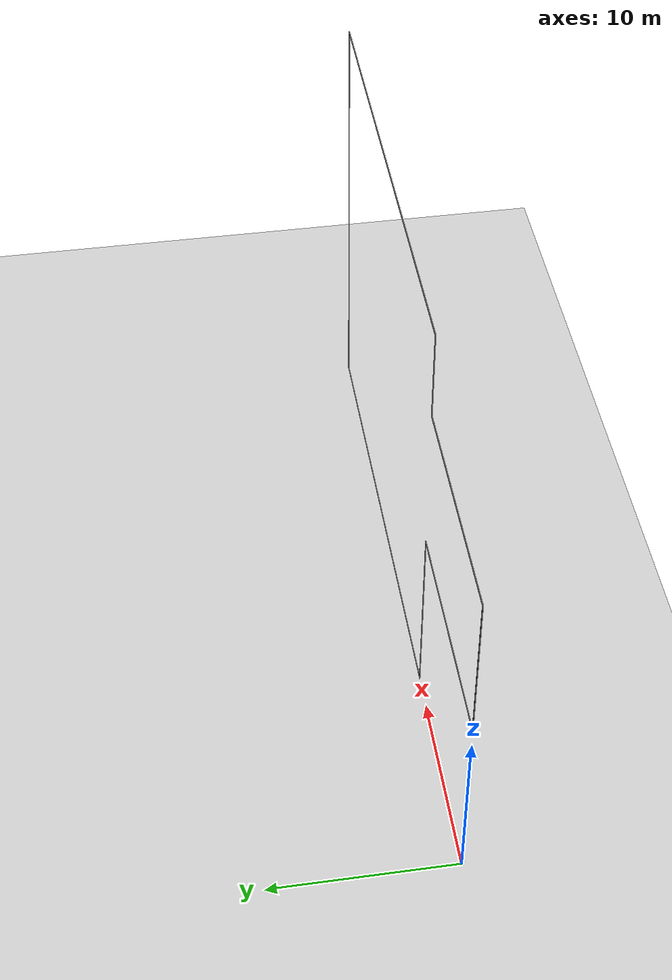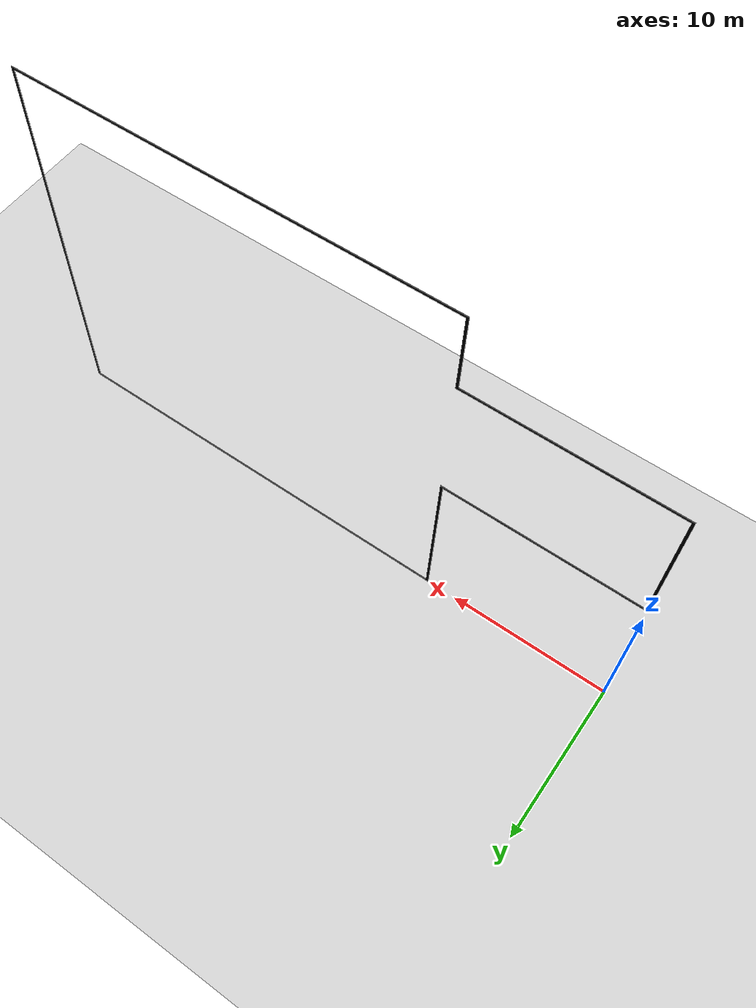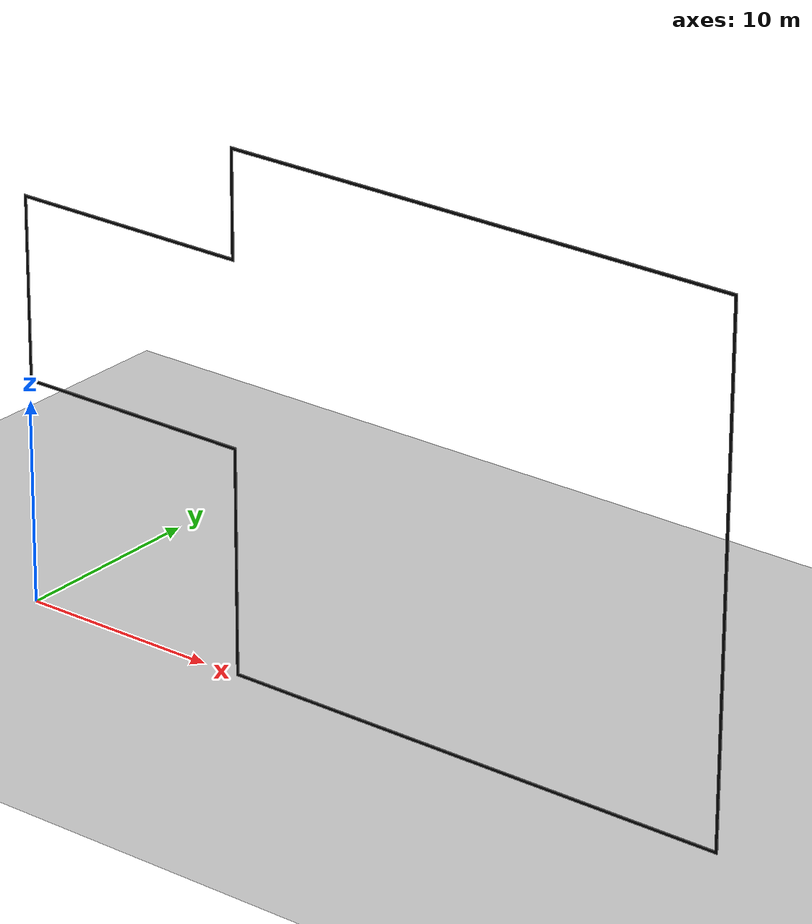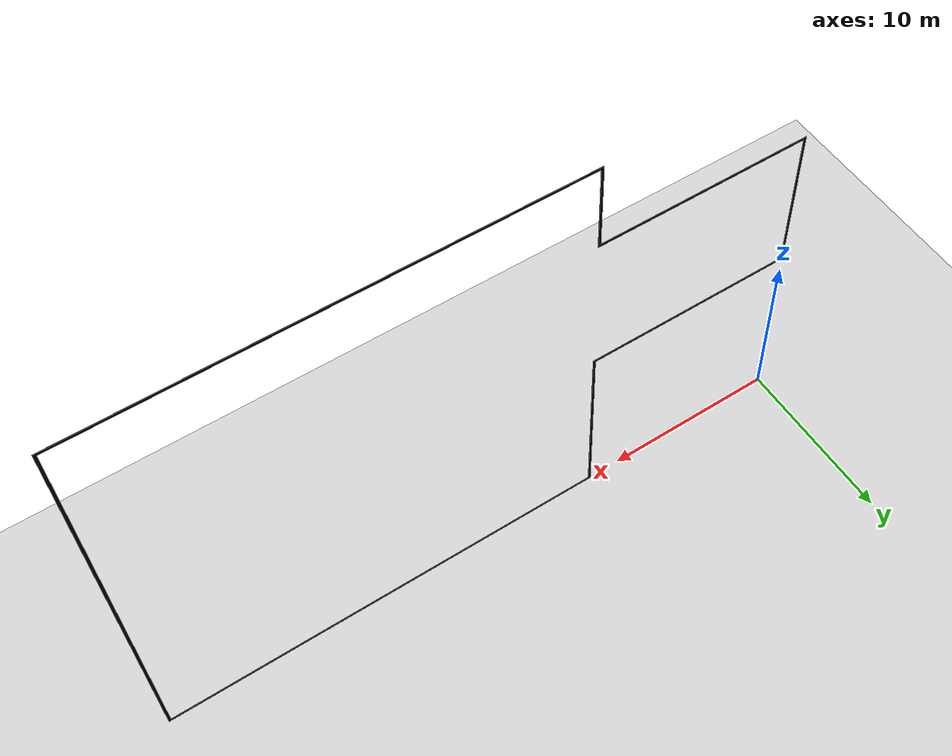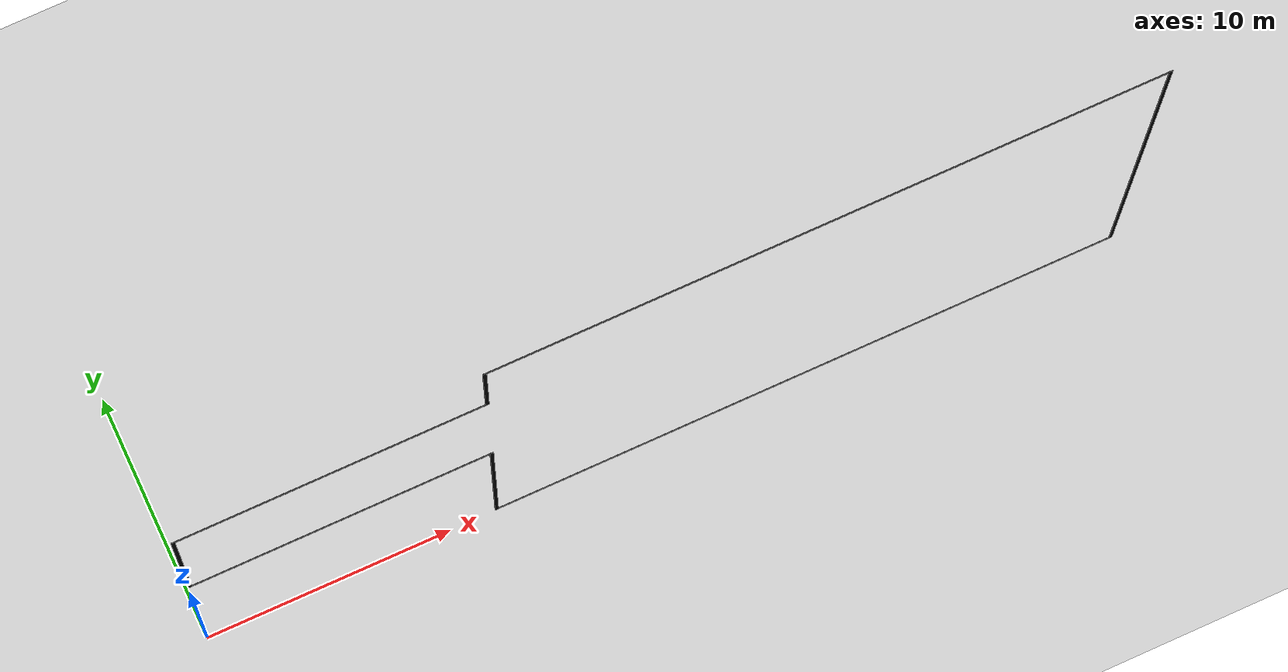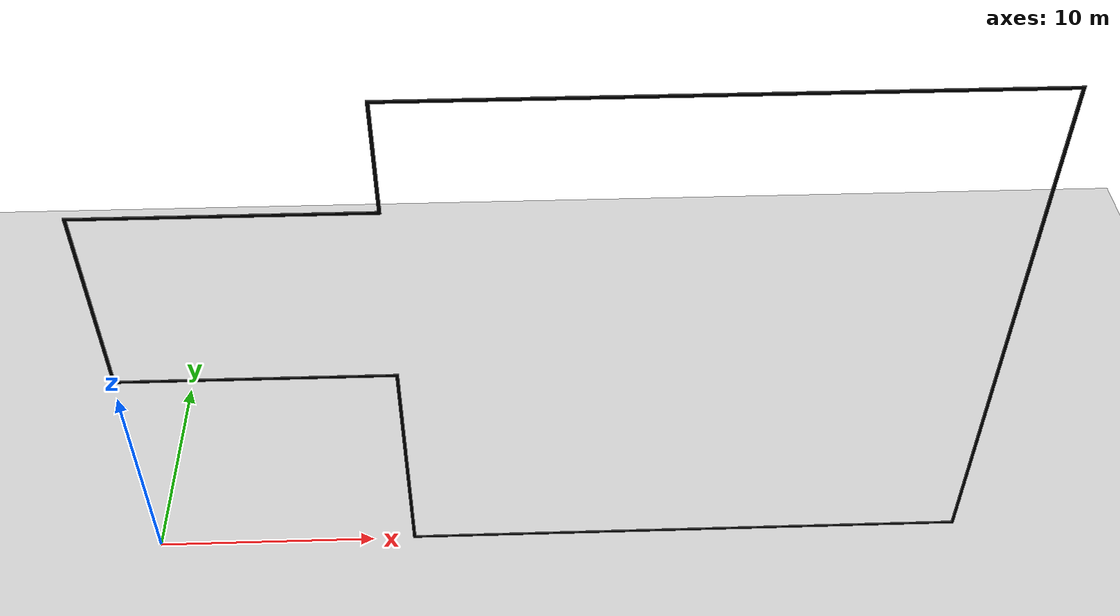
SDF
<?xml version="1.0" ?>
<sdf version="1.7">
  <world name="closed_loop_track3">
    <spherical_coordinates>
      <latitude_deg>0</latitude_deg>
      <longitude_deg>0</longitude_deg>
      <elevation>0</elevation>
      <heading_deg>0</heading_deg>
    </spherical_coordinates>

    <include>
      <uri>model://sun</uri>
    </include>
    <include>
      <uri>model://ground_plane</uri>
    </include>

    <include>
      <uri>model://track3</uri>
      <name>closed_loop_track3_walls</name>
      <pose>0 0 0 0 0 0</pose>
    </include>

    <physics type="ode">
      <real_time_update_rate>1000.0</real_time_update_rate>
      <max_step_size>0.001</max_step_size>
    </physics>
  </world>
</sdf>

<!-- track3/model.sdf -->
<sdf version="1.6">
  <model name="yolwzemin">
    <!-- Modelin tümüne uygulanacak pose: x y z roll pitch yaw -->
    <pose>0 -4.5 0 1.57 0 1.57</pose>

    <!-- Model statik olsun, böylece fizik etkileşimine girmesin -->
    <static>true</static>
    <link name="link">

      <!-- Collision bilgisi mevcut, ancak çarpışmalar devre dışı bırakılıyor -->

      <!-- Görsel Tanımlama -->
      <visual name="visual">
        <geometry>
          <mesh>
            <uri>meshes/robo_kasva_sekil_003.STL</uri>
            <scale>0.003 0.003 0.003</scale>
          </mesh>
        </geometry>
        <material>
          <ambient>0 0 0 1</ambient>
          <diffuse>0 0 0 1</diffuse>
          <specular>0.1 0.1 0.1 1</specular>
          <emissive>0 0 0 1</emissive>
        </material>
      </visual>

      <!-- Damping değerleri -->
      <velocity_decay>
        <linear>0.2</linear>
        <angular>0.2</angular>
      </velocity_decay>

      <!-- İnertial bilgileri -->
      <inertial>
        <mass>0.5</mass>
        <inertia>
          <ixx>0.005</ixx>
          <ixy>0</ixy>
          <ixz>0</ixz>
          <iyy>0.005</iyy>
          <iyz>0</iyz>
          <izz>0.005</izz>
        </inertia>
        <pose>0 0 0 0 0 0</pose>
      </inertial>

    </link>
  </model>
</sdf>
